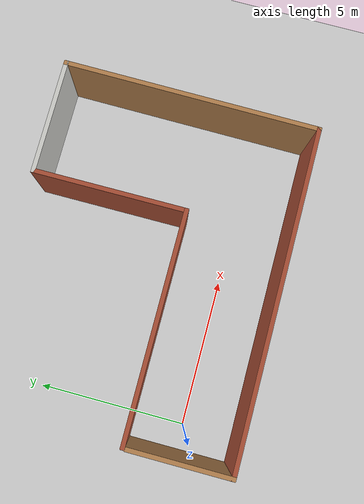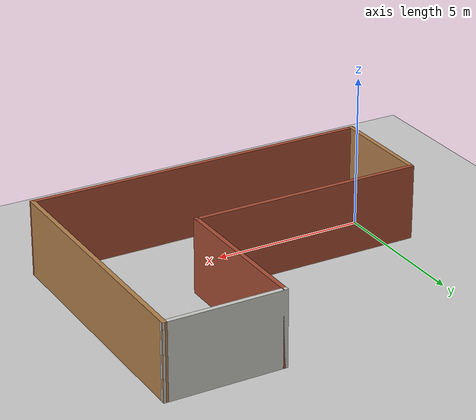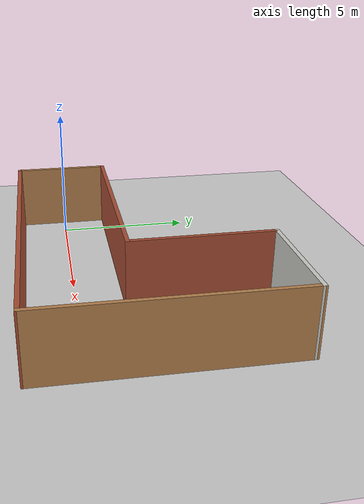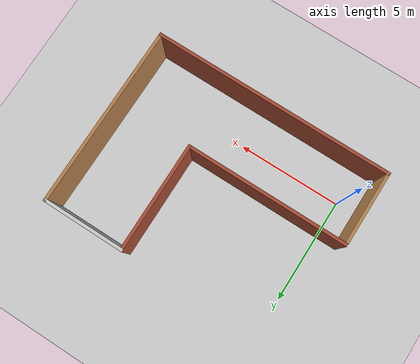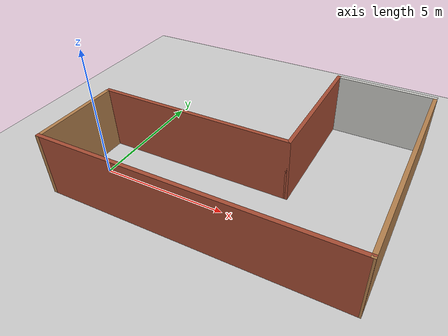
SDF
<sdf version='1.6'>
  <world name='default'>
    <light name='sun' type='directional'>
      <cast_shadows>1</cast_shadows>
      <pose frame=''>0 0 10 0 -0 0</pose>
      <diffuse>0.8 0.8 0.8 1</diffuse>
      <specular>0.1 0.1 0.1 1</specular>
      <attenuation>
        <range>1000</range>
        <constant>0.9</constant>
        <linear>0.01</linear>
        <quadratic>0.001</quadratic>
      </attenuation>
      <direction>-0.5 0.5 -1</direction>
    </light>
    <model name='ground_plane'>
      <static>1</static>
      <link name='link'>
        <collision name='collision'>
          <geometry>
            <plane>
              <normal>0 0 1</normal>
              <size>100 100</size>
            </plane>
          </geometry>
          <surface>
            <friction>
              <ode>
                <mu>100</mu>
                <mu2>50</mu2>
              </ode>
              <torsional>
                <ode/>
              </torsional>
            </friction>
            <contact>
              <ode/>
            </contact>
            <bounce/>
          </surface>
          <max_contacts>10</max_contacts>
        </collision>
        <visual name='visual'>
          <cast_shadows>0</cast_shadows>
          <geometry>
            <plane>
              <normal>0 0 1</normal>
              <size>100 100</size>
            </plane>
          </geometry>
          <material>
            <script>
              <uri>file://media/materials/scripts/gazebo.material</uri>
              <name>Gazebo/Grey</name>
            </script>
          </material>
        </visual>
        <self_collide>0</self_collide>
        <kinematic>0</kinematic>
        <gravity>1</gravity>
      </link>
    </model>
    <gravity>0 0 -9.8</gravity>
    <magnetic_field>6e-06 2.3e-05 -4.2e-05</magnetic_field>
    <atmosphere type='adiabatic'/>
    <physics name='default_physics' default='0' type='ode'>
      <real_time_update_rate>0</real_time_update_rate>
    </physics>
    <scene>
      <ambient>0.4 0.4 0.4 1</ambient>
      <background>0.7 0.7 0.7 1</background>
      <shadows>1</shadows>
    </scene>
    <spherical_coordinates>
      <surface_model>EARTH_WGS84</surface_model>
      <latitude_deg>0</latitude_deg>
      <longitude_deg>0</longitude_deg>
      <elevation>0</elevation>
      <heading_deg>0</heading_deg>
    </spherical_coordinates>
    <gui fullscreen='0'>
      <camera name='user_camera'>
        <pose frame=''>2.93104 -2.88465 21.9357 0 1.25964 1.62419</pose>
        <view_controller>orbit</view_controller>
        <projection_type>perspective</projection_type>
      </camera>
    </gui>
    <model name='simple_maze'>
      <pose frame=''>4.77499 2.52089 0 0 -0 0</pose>
      <link name='Wall_11'>
        <collision name='Wall_11_Collision'>
          <geometry>
            <box>
              <size>8.734 0.15 2.5</size>
            </box>
          </geometry>
          <pose frame=''>0 0 1.25 0 -0 0</pose>
          <max_contacts>10</max_contacts>
          <surface>
            <contact>
              <ode/>
            </contact>
            <bounce/>
            <friction>
              <torsional>
                <ode/>
              </torsional>
              <ode/>
            </friction>
          </surface>
        </collision>
        <visual name='Wall_11_Visual'>
          <pose frame=''>0 0 1.25 0 -0 0</pose>
          <geometry>
            <box>
              <size>8.734 0.15 2.5</size>
            </box>
          </geometry>
          <material>
            <script>
              <uri>file://media/materials/scripts/gazebo.material</uri>
              <name>Gazebo/Wood</name>
            </script>
            <ambient>1 1 1 1</ambient>
          </material>
        </visual>
        <pose frame=''>5.67473 0 0 0 0 -1.57795</pose>
        <self_collide>0</self_collide>
        <kinematic>0</kinematic>
        <gravity>1</gravity>
      </link>
      <link name='Wall_12'>
        <collision name='Wall_12_Collision'>
          <geometry>
            <box>
              <size>11.5 0.15 2.5</size>
            </box>
          </geometry>
          <pose frame=''>0 0 1.25 0 -0 0</pose>
          <max_contacts>10</max_contacts>
          <surface>
            <contact>
              <ode/>
            </contact>
            <bounce/>
            <friction>
              <torsional>
                <ode/>
              </torsional>
              <ode/>
            </friction>
          </surface>
        </collision>
        <visual name='Wall_12_Visual'>
          <pose frame=''>0 0 1.25 0 -0 0</pose>
          <geometry>
            <box>
              <size>11.5 0.15 2.5</size>
            </box>
          </geometry>
          <material>
            <script>
              <uri>file://media/materials/scripts/gazebo.material</uri>
              <name>Gazebo/Bricks</name>
            </script>
            <ambient>1 1 1 1</ambient>
          </material>
        </visual>
        <pose frame=''>-0.030993 -4.29189 0 0 -0 3.14159</pose>
        <self_collide>0</self_collide>
        <kinematic>0</kinematic>
        <gravity>1</gravity>
      </link>
      <link name='Wall_13'>
        <collision name='Wall_13_Collision'>
          <geometry>
            <box>
              <size>3.5 0.15 2.5</size>
            </box>
          </geometry>
          <pose frame=''>0 0 1.25 0 -0 0</pose>
          <max_contacts>10</max_contacts>
          <surface>
            <contact>
              <ode/>
            </contact>
            <bounce/>
            <friction>
              <torsional>
                <ode/>
              </torsional>
              <ode/>
            </friction>
          </surface>
        </collision>
        <visual name='Wall_13_Visual'>
          <pose frame=''>0 0 1.25 0 -0 0</pose>
          <geometry>
            <box>
              <size>3.5 0.15 2.5</size>
            </box>
          </geometry>
          <material>
            <script>
              <uri>file://media/materials/scripts/gazebo.material</uri>
              <name>Gazebo/Wood</name>
            </script>
            <ambient>1 1 1 1</ambient>
          </material>
        </visual>
        <pose frame=''>-5.70599 -2.61689 0 0 -0 1.5708</pose>
        <self_collide>0</self_collide>
        <kinematic>0</kinematic>
        <gravity>1</gravity>
      </link>
      <link name='Wall_2'>
        <collision name='Wall_2_Collision'>
          <geometry>
            <box>
              <size>7.75 0.15 2.5</size>
            </box>
          </geometry>
          <pose frame=''>0 0 1.25 0 -0 0</pose>
          <max_contacts>10</max_contacts>
          <surface>
            <contact>
              <ode/>
            </contact>
            <bounce/>
            <friction>
              <torsional>
                <ode/>
              </torsional>
              <ode/>
            </friction>
          </surface>
        </collision>
        <visual name='Wall_2_Visual'>
          <pose frame=''>0 0 1.25 0 -0 0</pose>
          <geometry>
            <box>
              <size>7.75 0.15 2.5</size>
            </box>
          </geometry>
          <material>
            <script>
              <uri>file://media/materials/scripts/gazebo.material</uri>
              <name>Gazebo/Bricks</name>
            </script>
            <ambient>1 1 1 1</ambient>
          </material>
        </visual>
        <pose frame=''>-1.88336 -0.808111 0 0 -0 0</pose>
        <self_collide>0</self_collide>
        <kinematic>0</kinematic>
        <gravity>1</gravity>
      </link>
      <link name='Wall_6'>
        <collision name='Wall_6_Collision'>
          <geometry>
            <box>
              <size>5.25 0.15 2.5</size>
            </box>
          </geometry>
          <pose frame=''>0 0 1.25 0 -0 0</pose>
          <max_contacts>10</max_contacts>
          <surface>
            <contact>
              <ode/>
            </contact>
            <bounce/>
            <friction>
              <torsional>
                <ode/>
              </torsional>
              <ode/>
            </friction>
          </surface>
        </collision>
        <visual name='Wall_6_Visual'>
          <pose frame=''>0 0 1.25 0 -0 0</pose>
          <geometry>
            <box>
              <size>5.25 0.15 2.5</size>
            </box>
          </geometry>
          <material>
            <script>
              <uri>file://media/materials/scripts/gazebo.material</uri>
              <name>Gazebo/Bricks</name>
            </script>
            <ambient>1 1 1 1</ambient>
          </material>
        </visual>
        <pose frame=''>1.91664 1.74189 0 0 -0 1.5708</pose>
        <self_collide>0</self_collide>
        <kinematic>0</kinematic>
        <gravity>1</gravity>
      </link>
      <link name='Wall_7'>
        <collision name='Wall_7_Collision'>
          <geometry>
            <box>
              <size>3.93882 0.15 2.5</size>
            </box>
          </geometry>
          <pose frame=''>0 0 1.25 0 -0 0</pose>
          <max_contacts>10</max_contacts>
          <surface>
            <contact>
              <ode/>
            </contact>
            <bounce/>
            <friction>
              <torsional>
                <ode/>
              </torsional>
              <ode/>
            </friction>
          </surface>
        </collision>
        <visual name='Wall_7_Visual'>
          <pose frame=''>0 0 1.25 0 -0 0</pose>
          <geometry>
            <box>
              <size>3.93882 0.15 2.5</size>
            </box>
          </geometry>
          <material>
            <script>
              <uri>file://media/materials/scripts/gazebo.material</uri>
              <name>Gazebo/CeilingTiled</name>
            </script>
            <ambient>1 1 1 1</ambient>
          </material>
        </visual>
        <pose frame=''>3.81105 4.29189 0 0 -0 0</pose>
        <self_collide>0</self_collide>
        <kinematic>0</kinematic>
        <gravity>1</gravity>
      </link>
      <static>1</static>
    </model>
  </world>
</sdf>
